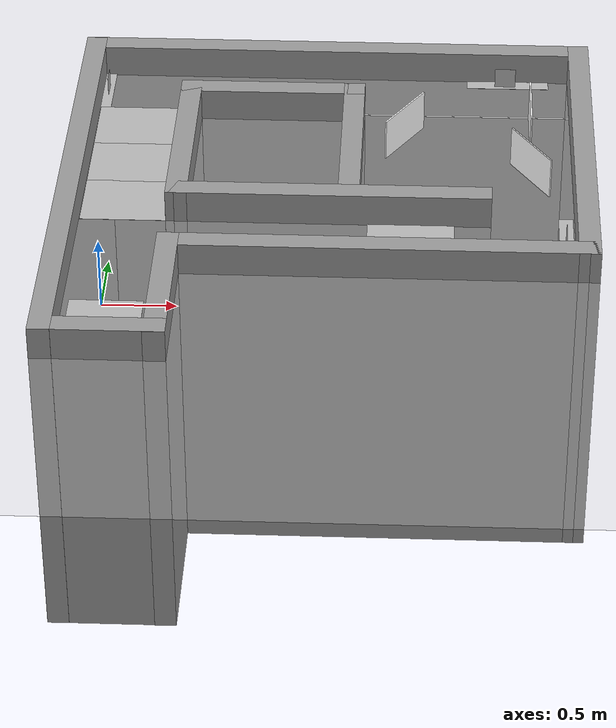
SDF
<sdf version="1.7">
 <world name="default">
  <light name="sun" type="directional">
   <pose>0 0 10 0 -0 0</pose>
   <diffuse>0.8 0.8 0.8 1</diffuse>
   <specular>0.2 0.2 0.2 1</specular>
   <attenuation>
    <range>1000</range>
    <constant>0.9</constant>
    <linear>0.01</linear>
    <quadratic>0.001</quadratic>
   </attenuation>
   <direction>-0.5 0.1 -0.9</direction>
   <spot><inner_angle>0</inner_angle><outer_angle>0</outer_angle><falloff>0</falloff></spot>
  </light>
  <model name="ground_plane">
   <static>1</static>
   <link name="link">
    <collision name="collision">
     <geometry><plane><normal>0 0 1</normal><size>100 100</size></plane></geometry>
     <surface><friction><ode><mu>100</mu><mu2>50</mu2></ode></friction></surface>
    </collision>
    <visual name="visual">
     <cast_shadows>0</cast_shadows>
     <geometry><plane><normal>0 0 1</normal><size>100 100</size></plane></geometry>
     <material>
      <script><uri>file://media/materials/scripts/gazebo.material</uri><name>Gazebo/Grey</name></script>
     </material>
    </visual>
   </link>
  </model>
  <gravity>0 0 -9.8</gravity>
  <magnetic_field>6e-06 2.3e-05 -4.2e-05</magnetic_field>
  <atmosphere type="adiabatic"/>
  <physics type="ode">
   <max_step_size>0.001</max_step_size>
   <real_time_factor>1</real_time_factor>
   <real_time_update_rate>1000</real_time_update_rate>
  </physics>
  <scene><ambient>0.4 0.4 0.4 1</ambient><background>0.7 0.7 0.7 1</background><shadows>1</shadows></scene>
  <spherical_coordinates>
   <surface_model>EARTH_WGS84</surface_model>
   <latitude_deg>0</latitude_deg>
   <longitude_deg>0</longitude_deg>
   <elevation>0</elevation>
   <heading_deg>0</heading_deg>
  </spherical_coordinates>
  <model name="BarrierPlate_0">
   <link name="BarrierPlate">
    <pose>0.0005 0 0 0 0 -1.5708</pose>
    <visual name="BarrierPlate1">
     <pose>0 0 0.15 0 -0 0</pose>
     <geometry><box><size>0.5 0.01 0.3</size></box></geometry>
     <material><ambient>1 1 1 1</ambient><shader type="pixel"/></material>
     <meta><layer>0</layer></meta>
    </visual>
    <collision name="BarrierPlate2">
     <pose>0 0 0.15 0 -0 0</pose>
     <geometry><box><size>0.5 0.01 0.3</size></box></geometry>
     <surface>
      <friction>
       <ode><mu>1</mu><mu2>1</mu2><fdir1>0 0 0</fdir1><slip1>0</slip1><slip2>0</slip2></ode>
       <torsional>
        <coefficient>1</coefficient>
        <patch_radius>0</patch_radius>
        <surface_radius>0</surface_radius>
        <use_patch_radius>1</use_patch_radius>
        <ode><slip>0</slip></ode>
       </torsional>
      </friction>
      <bounce><restitution_coefficient>0</restitution_coefficient><threshold>1e+06</threshold></bounce>
      <contact>
       <collide_without_contact>0</collide_without_contact>
       <collide_without_contact_bitmask>1</collide_without_contact_bitmask>
       <collide_bitmask>1</collide_bitmask>
       <ode>
        <soft_cfm>0</soft_cfm>
        <soft_erp>0.2</soft_erp>
        <kp>1e+13</kp>
        <kd>1</kd>
        <max_vel>0.01</max_vel>
        <min_depth>0</min_depth>
       </ode>
       <bullet>
        <split_impulse>1</split_impulse>
        <split_impulse_penetration_threshold>-0.01</split_impulse_penetration_threshold>
        <soft_cfm>0</soft_cfm>
        <soft_erp>0.2</soft_erp>
        <kp>1e+13</kp>
        <kd>1</kd>
       </bullet>
      </contact>
     </surface>
    </collision>
   </link>
   <static>1</static>
   <pose>2.86775 1.63871 0 0 -0 0.560227</pose>
  </model>
  <model name="19th_QR_position1">
   <static>1</static>
   <link name="link">
    <collision name="collision">
     <geometry><box><size>0.1 0.6 0.001</size><normal>0 0 1</normal></box></geometry>
     <surface><friction><ode><mu>100</mu><mu2>50</mu2></ode></friction></surface>
    </collision>
    <visual name="visual">
     <cast_shadows>0</cast_shadows>
     <geometry><box><size>0.1 0.6 0.001</size><normal>0 0 1</normal></box></geometry>
     <material>
      <script>
       <uri>model://19th_QR_position1/materials/scripts</uri>
       <uri>model://19th_QR_position1/materials/textures</uri>
       <name>position_qr1</name>
      </script>
     </material>
    </visual>
   </link>
   <pose>-0.237613 2.79447 0 0 -0 0</pose>
  </model>
  <model name="19th_QR_position1_0">
   <static>1</static>
   <link name="link">
    <collision name="collision">
     <geometry><box><size>0.1 0.6 0.001</size><normal>0 0 1</normal></box></geometry>
     <surface><friction><ode><mu>100</mu><mu2>50</mu2></ode></friction></surface>
    </collision>
    <visual name="visual">
     <cast_shadows>0</cast_shadows>
     <geometry><box><size>0.1 0.6 0.001</size><normal>0 0 1</normal></box></geometry>
     <material>
      <script>
       <uri>model://19th_QR_position1/materials/scripts</uri>
       <uri>model://19th_QR_position1/materials/textures</uri>
       <name>position_qr1</name>
      </script>
     </material>
    </visual>
   </link>
   <pose>3.10556 0.842469 0 0 -0 0</pose>
  </model>
  <model name="19th_start">
   <static>1</static>
   <link name="link">
    <collision name="collision">
     <geometry><box><size>0.5 0.5 0.001</size><normal>0 0 1</normal></box></geometry>
     <surface><friction><ode><mu>100</mu><mu2>50</mu2></ode></friction></surface>
    </collision>
    <visual name="visual">
     <cast_shadows>0</cast_shadows>
     <geometry><box><size>0.5 0.5 0.001</size><normal>0 0 1</normal></box></geometry>
     <material>
      <script>
       <uri>model://19th_ros_start/materials/scripts</uri>
       <uri>model://19th_ros_start/materials/textures</uri>
       <name>qr_position2_mat</name>
      </script>
     </material>
    </visual>
   </link>
   <pose>0.026452 -0.198061 0 0 -0 1.5708</pose>
  </model>
  <model name="19th_pickup_point">
   <static>1</static>
   <link name="link">
    <collision name="collision">
     <geometry><box><size>0.6 0.67681 0.001</size><normal>0 0 1</normal></box></geometry>
     <surface><friction><ode><mu>100</mu><mu2>50</mu2></ode></friction></surface>
    </collision>
    <visual name="visual">
     <cast_shadows>0</cast_shadows>
     <geometry><box><size>0.6 0.67681 0.001</size><normal>0 0 1</normal></box></geometry>
     <material>
      <script>
       <uri>model://19th_pickup_point/materials/scripts</uri>
       <uri>model://19th_pickup_point/materials/textures</uri>
       <name>19th_pickup_point</name>
      </script>
     </material>
    </visual>
   </link>
   <pose>2.03487 0.786351 0 0 -0 0</pose>
  </model>
  <model name="white_line">
   <static>1</static>
   <link name="link">
    <collision name="collision">
     <geometry><box><size>0.049223 0.015 0.0001</size><normal>0 0 1</normal></box></geometry>
     <surface><friction><ode><mu>100</mu><mu2>50</mu2></ode></friction></surface>
    </collision>
    <visual name="visual">
     <geometry><box><size>0.049223 0.015 0.0001</size><normal>0 0 1</normal></box></geometry>
     <material>
      <script>
       <uri>model://white_line/materials/scripts</uri>
       <uri>model://white_line/materials/textures</uri>
       <name>white_line</name>
      </script>
     </material>
    </visual>
   </link>
   <pose>2.46625 1.36887 0 0 -0 0</pose>
  </model>
  <model name="white_line_clone">
   <static>1</static>
   <link name="link">
    <collision name="collision">
     <geometry><box><size>1.59356 0.015 0.0001</size><normal>0 0 1</normal></box></geometry>
     <surface><friction><ode><mu>100</mu><mu2>50</mu2></ode></friction></surface>
    </collision>
    <visual name="visual">
     <geometry><box><size>1.59356 0.015 0.0001</size><normal>0 0 1</normal></box></geometry>
     <material>
      <script>
       <uri>model://white_line/materials/scripts</uri>
       <uri>model://white_line/materials/textures</uri>
       <name>white_line</name>
      </script>
     </material>
    </visual>
   </link>
   <pose>2.44796 2.47781 0 0 -0 0</pose>
  </model>
  <model name="19th_A">
   <static>1</static>
   <link name="link">
    <collision name="collision">
     <geometry><box><size>0.6 0.5 0.001</size><normal>0 0 1</normal></box></geometry>
     <surface><friction><ode><mu>100</mu><mu2>50</mu2></ode></friction></surface>
    </collision>
    <visual name="visual">
     <cast_shadows>0</cast_shadows>
     <geometry><box><size>0.6 0.5 0.001</size><normal>0 0 1</normal></box></geometry>
     <material>
      <script>
       <uri>model://19th_A/materials/scripts</uri>
       <uri>model://19th_A/materials/textures</uri>
       <name>position_A</name>
      </script>
     </material>
    </visual>
   </link>
   <pose>0.039808 2.26505 0 0 -0 0</pose>
  </model>
  <model name="19th_B">
   <static>1</static>
   <link name="link">
    <collision name="collision">
     <geometry><box><size>0.6 0.5 0.001</size><normal>0 0 1</normal></box></geometry>
     <surface><friction><ode><mu>100</mu><mu2>50</mu2></ode></friction></surface>
    </collision>
    <visual name="visual">
     <cast_shadows>0</cast_shadows>
     <geometry><box><size>0.6 0.5 0.001</size><normal>0 0 1</normal></box></geometry>
     <material>
      <script>
       <uri>model://19th_B/materials/scripts</uri>
       <uri>model://19th_B/materials/textures</uri>
       <name>position_B</name>
      </script>
     </material>
    </visual>
   </link>
   <pose>0.040568 1.76746 0 0 -0 0</pose>
  </model>
  <model name="19th_C">
   <static>1</static>
   <link name="link">
    <collision name="collision">
     <geometry><box><size>0.6 0.5 0.001</size><normal>0 0 1</normal></box></geometry>
     <surface><friction><ode><mu>100</mu><mu2>50</mu2></ode></friction></surface>
    </collision>
    <visual name="visual">
     <cast_shadows>0</cast_shadows>
     <geometry><box><size>0.6 0.5 0.001</size><normal>0 0 1</normal></box></geometry>
     <material>
      <script>
       <uri>model://19th_C/materials/scripts</uri>
       <uri>model://19th_C/materials/textures</uri>
       <name>position_C</name>
      </script>
     </material>
    </visual>
   </link>
   <pose>0.040262 1.2736 0 0 -0 0</pose>
  </model>
  <model name="19th_second_wall_0">
   <pose>1.45069 1.26352 -2.271 0 -0 0</pose>
   <link name="Wall_20">
    <collision name="Wall_20_Collision">
     <geometry><box><size>0.75 0.15 2.5</size></box></geometry>
     <pose>0 0 1.25 0 -0 0</pose>
    </collision>
    <visual name="Wall_20_Visual">
     <pose>0 0 1.25 0 -0 0</pose>
     <geometry><box><size>0.75 0.15 2.5</size></box></geometry>
     <material>
      <script><uri>file://media/materials/scripts/gazebo.material</uri><name>Gazebo/Grey</name></script>
      <ambient>1 1 1 1</ambient>
     </material>
     <meta><layer>0</layer></meta>
    </visual>
    <pose>-1.34688 -1.79788 0 0 -0 0</pose>
   </link>
   <link name="Wall_22">
    <collision name="Wall_22_Collision">
     <geometry><box><size>1.15138 0.15 2.5</size></box></geometry>
     <pose>0 0 1.25 0 -0 0</pose>
    </collision>
    <visual name="Wall_22_Visual">
     <pose>0 0 1.25 0 -0 0</pose>
     <geometry><box><size>1.15138 0.15 2.5</size></box></geometry>
     <material>
      <script><uri>file://media/materials/scripts/gazebo.material</uri><name>Gazebo/Grey</name></script>
      <ambient>1 1 1 1</ambient>
     </material>
     <meta><layer>0</layer></meta>
    </visual>
    <pose>-1.04688 -1.30003 0 0 -0 1.5708</pose>
   </link>
   <link name="Wall_23">
    <collision name="Wall_23_Collision">
     <geometry><box><size>2.98718 0.15 2.5</size></box></geometry>
     <pose>0 0 1.25 0 -0 0</pose>
    </collision>
    <visual name="Wall_23_Visual">
     <pose>0 0 1.25 0 -0 0</pose>
     <geometry><box><size>2.98718 0.15 2.5</size></box></geometry>
     <material>
      <script><uri>file://media/materials/scripts/gazebo.material</uri><name>Gazebo/Grey</name></script>
      <ambient>1 1 1 1</ambient>
     </material>
     <meta><layer>0</layer></meta>
    </visual>
    <pose>0.371705 -0.800768 0 0 -0 -0.001006</pose>
   </link>
   <link name="Wall_24">
    <collision name="Wall_24_Collision">
     <geometry><box><size>2.75 0.15 2.5</size></box></geometry>
     <pose>0 0 1.25 0 -0 0</pose>
    </collision>
    <visual name="Wall_24_Visual">
     <pose>0 0 1.25 0 -0 0</pose>
     <geometry><box><size>2.75 0.15 2.5</size></box></geometry>
     <material>
      <script><uri>file://media/materials/scripts/gazebo.material</uri><name>Gazebo/Grey</name></script>
      <ambient>1 1 1 1</ambient>
     </material>
     <meta><layer>0</layer></meta>
    </visual>
    <pose>1.79029 0.497805 0 0 -0 1.5708</pose>
   </link>
   <link name="Wall_25">
    <collision name="Wall_25_Collision">
     <geometry><box><size>3.7306 0.15 2.5</size></box></geometry>
     <pose>0 0 1.25 0 -0 0</pose>
    </collision>
    <visual name="Wall_25_Visual">
     <pose>0 0 1.25 0 -0 0</pose>
     <geometry><box><size>3.7306 0.15 2.5</size></box></geometry>
     <material>
      <script><uri>file://media/materials/scripts/gazebo.material</uri><name>Gazebo/Grey</name></script>
      <ambient>1 1 1 1</ambient>
     </material>
     <meta><layer>0</layer></meta>
    </visual>
    <pose>-8e-06 1.79923 0 0 -0 3.1408</pose>
   </link>
   <link name="Wall_26">
    <collision name="Wall_26_Collision">
     <geometry><box><size>3.75 0.15 2.5</size></box></geometry>
     <pose>0 0 1.25 0 -0 0</pose>
    </collision>
    <visual name="Wall_26_Visual">
     <pose>0 0 1.25 0 -0 0</pose>
     <geometry><box><size>3.75 0.15 2.5</size></box></geometry>
     <material>
      <script><uri>file://media/materials/scripts/gazebo.material</uri><name>Gazebo/Grey</name></script>
      <ambient>1 1 1 1</ambient>
     </material>
     <meta><layer>0</layer></meta>
    </visual>
    <pose>-1.79031 0.000659 0 0 -0 -1.5708</pose>
   </link>
   <link name="Wall_28">
    <collision name="Wall_28_Collision">
     <geometry><box><size>2.25 0.15 2.5</size></box></geometry>
     <pose>0 0 1.25 0 -0 0</pose>
    </collision>
    <visual name="Wall_28_Visual">
     <pose>0 0 1.25 0 -0 0</pose>
     <geometry><box><size>2.25 0.15 2.5</size></box></geometry>
     <material>
      <script><uri>file://media/materials/scripts/gazebo.material</uri><name>Gazebo/Grey</name></script>
      <ambient>1 1 1 1</ambient>
     </material>
     <meta><layer>0</layer></meta>
    </visual>
    <pose>0.012483 -0.158745 0 0 -0 0</pose>
   </link>
   <link name="Wall_30">
    <collision name="Wall_30_Collision">
     <geometry><box><size>1.5099 0.15 2.5</size></box></geometry>
     <pose>0 0 1.25 0 -0 0</pose>
    </collision>
    <visual name="Wall_30_Visual">
     <pose>0 0 1.25 0 -0 0</pose>
     <geometry><box><size>1.5099 0.15 2.5</size></box></geometry>
     <material>
      <script><uri>file://media/materials/scripts/gazebo.material</uri><name>Gazebo/Grey</name></script>
      <ambient>1 1 1 1</ambient>
     </material>
     <meta><layer>0</layer></meta>
    </visual>
    <pose>-1.03565 0.52116 0 0 -0 1.56805</pose>
   </link>
   <link name="Wall_31">
    <collision name="Wall_31_Collision">
     <geometry><box><size>1.33593 0.15 2.5</size></box></geometry>
     <pose>0 0 1.25 0 -0 0</pose>
    </collision>
    <visual name="Wall_31_Visual">
     <pose>0 0 1.25 0 -0 0</pose>
     <geometry><box><size>1.33593 0.15 2.5</size></box></geometry>
     <material>
      <script><uri>file://media/materials/scripts/gazebo.material</uri><name>Gazebo/Grey</name></script>
      <ambient>1 1 1 1</ambient>
     </material>
     <meta><layer>0</layer></meta>
    </visual>
    <pose>-0.440822 1.20107 0 0 -0 0</pose>
   </link>
   <link name="Wall_32">
    <collision name="Wall_32_Collision">
     <geometry><box><size>1.5 0.15 2.5</size></box></geometry>
     <pose>0 0 1.25 0 -0 0</pose>
    </collision>
    <visual name="Wall_32_Visual">
     <pose>0 0 1.25 0 -0 0</pose>
     <geometry><box><size>1.5 0.15 2.5</size></box></geometry>
     <material>
      <script><uri>file://media/materials/scripts/gazebo.material</uri><name>Gazebo/Grey</name></script>
      <ambient>1 1 1 1</ambient>
     </material>
     <meta><layer>0</layer></meta>
    </visual>
    <pose>0.152144 0.526065 0 0 -0 -1.5708</pose>
   </link>
   <static>1</static>
  </model>
  <model name="19th_QR_position1_clone">
   <static>1</static>
   <link name="link">
    <collision name="collision">
     <geometry><box><size>0.1 0.6 0.001</size><normal>0 0 1</normal></box></geometry>
     <surface><friction><ode><mu>100</mu><mu2>50</mu2></ode></friction></surface>
    </collision>
    <visual name="visual">
     <cast_shadows>0</cast_shadows>
     <geometry><box><size>0.1 0.6 0.001</size><normal>0 0 1</normal></box></geometry>
     <material>
      <script>
       <uri>model://19th_QR_position1/materials/scripts</uri>
       <uri>model://19th_QR_position1/materials/textures</uri>
       <name>position_qr1</name>
      </script>
     </material>
    </visual>
   </link>
   <pose>2.72455 2.93341 0 0 -0 1.57408</pose>
  </model>
  <model name="BarrierPlate_0_clone">
   <link name="BarrierPlate">
    <pose>0.0005 0 0 0 0 -1.5708</pose>
    <visual name="BarrierPlate1">
     <pose>0 0 0.15 0 -0 0</pose>
     <geometry><box><size>0.5 0.01 0.3</size></box></geometry>
     <material><ambient>1 1 1 1</ambient><shader type="pixel"/></material>
     <meta><layer>0</layer></meta>
    </visual>
    <collision name="BarrierPlate2">
     <pose>0 0 0.15 0 -0 0</pose>
     <geometry><box><size>0.5 0.01 0.3</size></box></geometry>
     <surface>
      <friction>
       <ode><mu>1</mu><mu2>1</mu2><fdir1>0 0 0</fdir1><slip1>0</slip1><slip2>0</slip2></ode>
       <torsional>
        <coefficient>1</coefficient>
        <patch_radius>0</patch_radius>
        <surface_radius>0</surface_radius>
        <use_patch_radius>1</use_patch_radius>
        <ode><slip>0</slip></ode>
       </torsional>
      </friction>
      <bounce><restitution_coefficient>0</restitution_coefficient><threshold>1e+06</threshold></bounce>
      <contact>
       <collide_without_contact>0</collide_without_contact>
       <collide_without_contact_bitmask>1</collide_without_contact_bitmask>
       <collide_bitmask>1</collide_bitmask>
       <ode>
        <soft_cfm>0</soft_cfm>
        <soft_erp>0.2</soft_erp>
        <kp>1e+13</kp>
        <kd>1</kd>
        <max_vel>0.01</max_vel>
        <min_depth>0</min_depth>
       </ode>
       <bullet>
        <split_impulse>1</split_impulse>
        <split_impulse_penetration_threshold>-0.01</split_impulse_penetration_threshold>
        <soft_cfm>0</soft_cfm>
        <soft_erp>0.2</soft_erp>
        <kp>1e+13</kp>
        <kd>1</kd>
       </bullet>
      </contact>
     </surface>
    </collision>
   </link>
   <static>1</static>
   <pose>1.97385 2.09332 0.005764 0 -0 2.58608</pose>
  </model>
  <model name="BarrierPlate_0_clone_clone">
   <link name="BarrierPlate">
    <pose>0.0005 0 0 0 0 -1.5708</pose>
    <visual name="BarrierPlate1">
     <pose>0 0 0.15 0 -0 0</pose>
     <geometry><box><size>0.5 0.01 0.3</size></box></geometry>
     <material><ambient>1 1 1 1</ambient><shader type="pixel"/></material>
     <meta><layer>0</layer></meta>
    </visual>
    <collision name="BarrierPlate2">
     <pose>0 0 0.15 0 -0 0</pose>
     <geometry><box><size>0.5 0.01 0.3</size></box></geometry>
     <surface>
      <friction>
       <ode><mu>1</mu><mu2>1</mu2><fdir1>0 0 0</fdir1><slip1>0</slip1><slip2>0</slip2></ode>
       <torsional>
        <coefficient>1</coefficient>
        <patch_radius>0</patch_radius>
        <surface_radius>0</surface_radius>
        <use_patch_radius>1</use_patch_radius>
        <ode><slip>0</slip></ode>
       </torsional>
      </friction>
      <bounce><restitution_coefficient>0</restitution_coefficient><threshold>1e+06</threshold></bounce>
      <contact>
       <collide_without_contact>0</collide_without_contact>
       <collide_without_contact_bitmask>1</collide_without_contact_bitmask>
       <collide_bitmask>1</collide_bitmask>
       <ode>
        <soft_cfm>0</soft_cfm>
        <soft_erp>0.2</soft_erp>
        <kp>1e+13</kp>
        <kd>1</kd>
        <max_vel>0.01</max_vel>
        <min_depth>0</min_depth>
       </ode>
       <bullet>
        <split_impulse>1</split_impulse>
        <split_impulse_penetration_threshold>-0.01</split_impulse_penetration_threshold>
        <soft_cfm>0</soft_cfm>
        <soft_erp>0.2</soft_erp>
        <kp>1e+13</kp>
        <kd>1</kd>
       </bullet>
      </contact>
     </surface>
    </collision>
   </link>
   <static>1</static>
   <pose>2.8758 2.23728 0 0 -0 -3.14154</pose>
  </model>
  <model name="aruco_marker_3_0">
   <static>1</static>
   <link name="link">
    <inertial>
     <mass>0.001</mass>
     <inertia>
      <ixx>3.75e-06</ixx>
      <ixy>0</ixy>
      <ixz>0</ixz>
      <iyy>1.875e-06</iyy>
      <iyz>0</iyz>
      <izz>1.875e-06</izz>
     </inertia>
    </inertial>
    <visual name="front_visual">
     <pose>5e-05 0 0.076 0 -0 0</pose>
     <geometry><box><size>0.0001 0.15 0.15</size></box></geometry>
     <material>
      <script>
       <uri>model://aruco_marker_3/materials/scripts</uri>
       <uri>model://aruco_marker_3/materials/textures</uri>
       <name>aruco_3</name>
      </script>
     </material>
    </visual>
    <visual name="rear_visual">
     <pose>-5e-05 0 0.076 0 -0 0</pose>
     <geometry><box><size>0.0001 0.15 0.15</size></box></geometry>
     <material>
      <script>
       <uri>model://aruco_marker_3/materials/scripts</uri>
       <uri>model://aruco_marker_3/materials/textures</uri>
       <name>aruco_3</name>
      </script>
     </material>
    </visual>
    <collision name="collision">
     <pose>0 0 0.076 0 -0 0</pose>
     <geometry><box><size>0.0001 0.15 0.15</size></box></geometry>
    </collision>
   </link>
   <pose>3.10055 0.817667 0 0 -0 0</pose>
  </model>
  <model name="aruco_marker_6">
   <static>1</static>
   <link name="link">
    <inertial>
     <mass>0.001</mass>
     <inertia>
      <ixx>3.75e-06</ixx>
      <ixy>0</ixy>
      <ixz>0</ixz>
      <iyy>1.875e-06</iyy>
      <iyz>0</iyz>
      <izz>1.875e-06</izz>
     </inertia>
    </inertial>
    <visual name="front_visual">
     <pose>5e-05 0 0.076 0 -0 0</pose>
     <geometry><box><size>0.0001 0.15 0.15</size></box></geometry>
     <material>
      <script>
       <uri>model://aruco_marker_6/materials/scripts</uri>
       <uri>model://aruco_marker_6/materials/textures</uri>
       <name>aruco_6</name>
      </script>
     </material>
    </visual>
    <visual name="rear_visual">
     <pose>-5e-05 0 0.076 0 -0 0</pose>
     <geometry><box><size>0.0001 0.15 0.15</size></box></geometry>
     <material>
      <script>
       <uri>model://aruco_marker_6/materials/scripts</uri>
       <uri>model://aruco_marker_6/materials/textures</uri>
       <name>aruco_6</name>
      </script>
     </material>
    </visual>
    <collision name="collision">
     <pose>0 0 0 0.076 -0 0</pose>
     <geometry><box><size>0.0001 0.15 0.15</size></box></geometry>
    </collision>
   </link>
   <pose>2.70479 2.91146 0 0 -0 1.55476</pose>
  </model>
  <model name="aruco_marker_8">
   <static>1</static>
   <link name="link">
    <inertial>
     <mass>0.001</mass>
     <inertia>
      <ixx>3.75e-06</ixx>
      <ixy>0</ixy>
      <ixz>0</ixz>
      <iyy>1.875e-06</iyy>
      <iyz>0</iyz>
      <izz>1.875e-06</izz>
     </inertia>
    </inertial>
    <visual name="front_visual">
     <pose>5e-05 0 0.076 0 -0 0</pose>
     <geometry><box><size>0.0001 0.15 0.15</size></box></geometry>
     <material>
      <script>
       <uri>model://aruco_marker_8/materials/scripts</uri>
       <uri>model://aruco_marker_8/materials/textures</uri>
       <name>aruco_8</name>
      </script>
     </material>
    </visual>
    <visual name="rear_visual">
     <pose>-5e-05 0 0.076 0 -0 0</pose>
     <geometry><box><size>0.0001 0.15 0.15</size></box></geometry>
     <material>
      <script>
       <uri>model://aruco_marker_8/materials/scripts</uri>
       <uri>model://aruco_marker_8/materials/textures</uri>
       <name>aruco_8</name>
      </script>
     </material>
    </visual>
    <collision name="collision">
     <pose>0 0 0.076 0 -0 0</pose>
     <geometry><box><size>0.0001 0.15 0.15</size></box></geometry>
    </collision>
   </link>
   <pose>-0.221844 2.74493 0 0 -0 0</pose>
  </model>
 </world>
</sdf>
